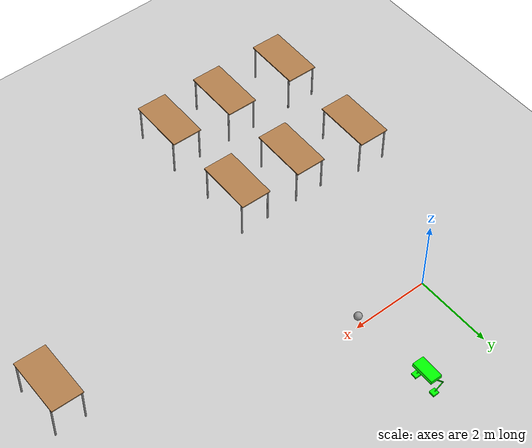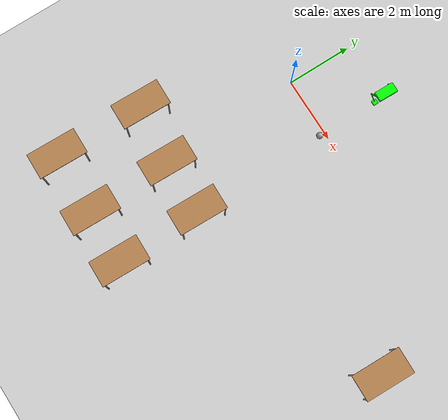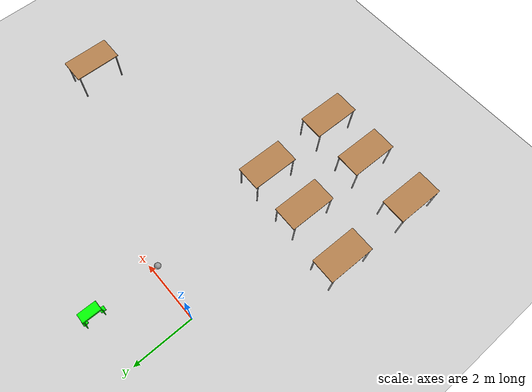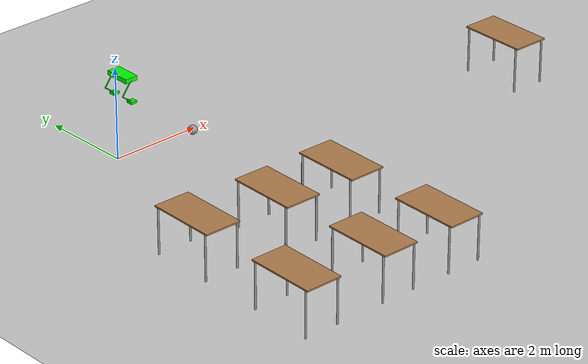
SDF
<sdf version="1.6">
 <world name="default">
  <model name="ground_plane">
   <static>1</static>
   <link name="link">
    <collision name="collision">
     <geometry><plane><normal>0 0 1</normal><size>100 100</size></plane></geometry>
     <surface>
      <contact><collide_bitmask>65535</collide_bitmask></contact>
      <friction><ode><mu>100</mu><mu2>50</mu2></ode></friction>
     </surface>
    </collision>
    <visual name="visual">
     <cast_shadows>0</cast_shadows>
     <geometry><plane><normal>0 0 1</normal><size>100 100</size></plane></geometry>
     <material>
      <script><uri>file://media/materials/scripts/gazebo.material</uri><name>Gazebo/Grey</name></script>
     </material>
    </visual>
   </link>
  </model>
  <model name="table_3">
   <static>1</static>
   <link name="link">
    <collision name="surface">
     <pose>0 0 1 0 -0 0</pose>
     <geometry><box><size>1.5 0.8 0.03</size></box></geometry>
     <surface><friction><ode><mu>0.6</mu><mu2>0.6</mu2></ode></friction></surface>
    </collision>
    <visual name="visual1">
     <pose>0 0 1 0 -0 0</pose>
     <geometry><box><size>1.5 0.8 0.03</size></box></geometry>
     <material>
      <script><uri>file://media/materials/scripts/gazebo.material</uri><name>Gazebo/Wood</name></script>
     </material>
    </visual>
    <collision name="front_left_leg">
     <pose>0.68 0.38 0.5 0 -0 0</pose>
     <geometry><cylinder><radius>0.02</radius><length>1</length></cylinder></geometry>
    </collision>
    <visual name="front_left_leg">
     <pose>0.68 0.38 0.5 0 -0 0</pose>
     <geometry><cylinder><radius>0.02</radius><length>1</length></cylinder></geometry>
     <material>
      <script><uri>file://media/materials/scripts/gazebo.material</uri><name>Gazebo/Grey</name></script>
     </material>
    </visual>
    <collision name="front_right_leg">
     <pose>0.68 -0.38 0.5 0 -0 0</pose>
     <geometry><cylinder><radius>0.02</radius><length>1</length></cylinder></geometry>
    </collision>
    <visual name="front_right_leg">
     <pose>0.68 -0.38 0.5 0 -0 0</pose>
     <geometry><cylinder><radius>0.02</radius><length>1</length></cylinder></geometry>
     <material>
      <script><uri>file://media/materials/scripts/gazebo.material</uri><name>Gazebo/Grey</name></script>
     </material>
    </visual>
    <collision name="back_right_leg">
     <pose>-0.68 -0.38 0.5 0 -0 0</pose>
     <geometry><cylinder><radius>0.02</radius><length>1</length></cylinder></geometry>
    </collision>
    <visual name="back_right_leg">
     <pose>-0.68 -0.38 0.5 0 -0 0</pose>
     <geometry><cylinder><radius>0.02</radius><length>1</length></cylinder></geometry>
     <material>
      <script><uri>file://media/materials/scripts/gazebo.material</uri><name>Gazebo/Grey</name></script>
     </material>
    </visual>
    <collision name="back_left_leg">
     <pose>-0.68 0.38 0.5 0 -0 0</pose>
     <geometry><cylinder><radius>0.02</radius><length>1</length></cylinder></geometry>
    </collision>
    <visual name="back_left_leg">
     <pose>-0.68 0.38 0.5 0 -0 0</pose>
     <geometry><cylinder><radius>0.02</radius><length>1</length></cylinder></geometry>
     <material>
      <script><uri>file://media/materials/scripts/gazebo.material</uri><name>Gazebo/Grey</name></script>
     </material>
    </visual>
   </link>
   <pose>-1.5427 -6.87927 0 0 -0 1.54837</pose>
  </model>
  <model name="table_3_clone">
   <static>1</static>
   <link name="link">
    <collision name="surface">
     <pose>0 0 1 0 -0 0</pose>
     <geometry><box><size>1.5 0.8 0.03</size></box></geometry>
     <surface><friction><ode><mu>0.6</mu><mu2>0.6</mu2></ode></friction></surface>
    </collision>
    <visual name="visual1">
     <pose>0 0 1 0 -0 0</pose>
     <geometry><box><size>1.5 0.8 0.03</size></box></geometry>
     <material>
      <script><uri>file://media/materials/scripts/gazebo.material</uri><name>Gazebo/Wood</name></script>
     </material>
    </visual>
    <collision name="front_left_leg">
     <pose>0.68 0.38 0.5 0 -0 0</pose>
     <geometry><cylinder><radius>0.02</radius><length>1</length></cylinder></geometry>
    </collision>
    <visual name="front_left_leg">
     <pose>0.68 0.38 0.5 0 -0 0</pose>
     <geometry><cylinder><radius>0.02</radius><length>1</length></cylinder></geometry>
     <material>
      <script><uri>file://media/materials/scripts/gazebo.material</uri><name>Gazebo/Grey</name></script>
     </material>
    </visual>
    <collision name="front_right_leg">
     <pose>0.68 -0.38 0.5 0 -0 0</pose>
     <geometry><cylinder><radius>0.02</radius><length>1</length></cylinder></geometry>
    </collision>
    <visual name="front_right_leg">
     <pose>0.68 -0.38 0.5 0 -0 0</pose>
     <geometry><cylinder><radius>0.02</radius><length>1</length></cylinder></geometry>
     <material>
      <script><uri>file://media/materials/scripts/gazebo.material</uri><name>Gazebo/Grey</name></script>
     </material>
    </visual>
    <collision name="back_right_leg">
     <pose>-0.68 -0.38 0.5 0 -0 0</pose>
     <geometry><cylinder><radius>0.02</radius><length>1</length></cylinder></geometry>
    </collision>
    <visual name="back_right_leg">
     <pose>-0.68 -0.38 0.5 0 -0 0</pose>
     <geometry><cylinder><radius>0.02</radius><length>1</length></cylinder></geometry>
     <material>
      <script><uri>file://media/materials/scripts/gazebo.material</uri><name>Gazebo/Grey</name></script>
     </material>
    </visual>
    <collision name="back_left_leg">
     <pose>-0.68 0.38 0.5 0 -0 0</pose>
     <geometry><cylinder><radius>0.02</radius><length>1</length></cylinder></geometry>
    </collision>
    <visual name="back_left_leg">
     <pose>-0.68 0.38 0.5 0 -0 0</pose>
     <geometry><cylinder><radius>0.02</radius><length>1</length></cylinder></geometry>
     <material>
      <script><uri>file://media/materials/scripts/gazebo.material</uri><name>Gazebo/Grey</name></script>
     </material>
    </visual>
   </link>
   <pose>-1.51069 -4.16084 0 0 -0 1.54837</pose>
  </model>
  <model name="table_3_clone_0">
   <static>1</static>
   <link name="link">
    <collision name="surface">
     <pose>0 0 1 0 -0 0</pose>
     <geometry><box><size>1.5 0.8 0.03</size></box></geometry>
     <surface><friction><ode><mu>0.6</mu><mu2>0.6</mu2></ode></friction></surface>
    </collision>
    <visual name="visual1">
     <pose>0 0 1 0 -0 0</pose>
     <geometry><box><size>1.5 0.8 0.03</size></box></geometry>
     <material>
      <script><uri>file://media/materials/scripts/gazebo.material</uri><name>Gazebo/Wood</name></script>
     </material>
    </visual>
    <collision name="front_left_leg">
     <pose>0.68 0.38 0.5 0 -0 0</pose>
     <geometry><cylinder><radius>0.02</radius><length>1</length></cylinder></geometry>
    </collision>
    <visual name="front_left_leg">
     <pose>0.68 0.38 0.5 0 -0 0</pose>
     <geometry><cylinder><radius>0.02</radius><length>1</length></cylinder></geometry>
     <material>
      <script><uri>file://media/materials/scripts/gazebo.material</uri><name>Gazebo/Grey</name></script>
     </material>
    </visual>
    <collision name="front_right_leg">
     <pose>0.68 -0.38 0.5 0 -0 0</pose>
     <geometry><cylinder><radius>0.02</radius><length>1</length></cylinder></geometry>
    </collision>
    <visual name="front_right_leg">
     <pose>0.68 -0.38 0.5 0 -0 0</pose>
     <geometry><cylinder><radius>0.02</radius><length>1</length></cylinder></geometry>
     <material>
      <script><uri>file://media/materials/scripts/gazebo.material</uri><name>Gazebo/Grey</name></script>
     </material>
    </visual>
    <collision name="back_right_leg">
     <pose>-0.68 -0.38 0.5 0 -0 0</pose>
     <geometry><cylinder><radius>0.02</radius><length>1</length></cylinder></geometry>
    </collision>
    <visual name="back_right_leg">
     <pose>-0.68 -0.38 0.5 0 -0 0</pose>
     <geometry><cylinder><radius>0.02</radius><length>1</length></cylinder></geometry>
     <material>
      <script><uri>file://media/materials/scripts/gazebo.material</uri><name>Gazebo/Grey</name></script>
     </material>
    </visual>
    <collision name="back_left_leg">
     <pose>-0.68 0.38 0.5 0 -0 0</pose>
     <geometry><cylinder><radius>0.02</radius><length>1</length></cylinder></geometry>
    </collision>
    <visual name="back_left_leg">
     <pose>-0.68 0.38 0.5 0 -0 0</pose>
     <geometry><cylinder><radius>0.02</radius><length>1</length></cylinder></geometry>
     <material>
      <script><uri>file://media/materials/scripts/gazebo.material</uri><name>Gazebo/Grey</name></script>
     </material>
    </visual>
   </link>
   <pose>0.323979 -6.91935 0 0 -0 1.54837</pose>
  </model>
  <model name="table_3_clone_1">
   <static>1</static>
   <link name="link">
    <collision name="surface">
     <pose>0 0 1 0 -0 0</pose>
     <geometry><box><size>1.5 0.8 0.03</size></box></geometry>
     <surface><friction><ode><mu>0.6</mu><mu2>0.6</mu2></ode></friction></surface>
    </collision>
    <visual name="visual1">
     <pose>0 0 1 0 -0 0</pose>
     <geometry><box><size>1.5 0.8 0.03</size></box></geometry>
     <material>
      <script><uri>file://media/materials/scripts/gazebo.material</uri><name>Gazebo/Wood</name></script>
     </material>
    </visual>
    <collision name="front_left_leg">
     <pose>0.68 0.38 0.5 0 -0 0</pose>
     <geometry><cylinder><radius>0.02</radius><length>1</length></cylinder></geometry>
    </collision>
    <visual name="front_left_leg">
     <pose>0.68 0.38 0.5 0 -0 0</pose>
     <geometry><cylinder><radius>0.02</radius><length>1</length></cylinder></geometry>
     <material>
      <script><uri>file://media/materials/scripts/gazebo.material</uri><name>Gazebo/Grey</name></script>
     </material>
    </visual>
    <collision name="front_right_leg">
     <pose>0.68 -0.38 0.5 0 -0 0</pose>
     <geometry><cylinder><radius>0.02</radius><length>1</length></cylinder></geometry>
    </collision>
    <visual name="front_right_leg">
     <pose>0.68 -0.38 0.5 0 -0 0</pose>
     <geometry><cylinder><radius>0.02</radius><length>1</length></cylinder></geometry>
     <material>
      <script><uri>file://media/materials/scripts/gazebo.material</uri><name>Gazebo/Grey</name></script>
     </material>
    </visual>
    <collision name="back_right_leg">
     <pose>-0.68 -0.38 0.5 0 -0 0</pose>
     <geometry><cylinder><radius>0.02</radius><length>1</length></cylinder></geometry>
    </collision>
    <visual name="back_right_leg">
     <pose>-0.68 -0.38 0.5 0 -0 0</pose>
     <geometry><cylinder><radius>0.02</radius><length>1</length></cylinder></geometry>
     <material>
      <script><uri>file://media/materials/scripts/gazebo.material</uri><name>Gazebo/Grey</name></script>
     </material>
    </visual>
    <collision name="back_left_leg">
     <pose>-0.68 0.38 0.5 0 -0 0</pose>
     <geometry><cylinder><radius>0.02</radius><length>1</length></cylinder></geometry>
    </collision>
    <visual name="back_left_leg">
     <pose>-0.68 0.38 0.5 0 -0 0</pose>
     <geometry><cylinder><radius>0.02</radius><length>1</length></cylinder></geometry>
     <material>
      <script><uri>file://media/materials/scripts/gazebo.material</uri><name>Gazebo/Grey</name></script>
     </material>
    </visual>
   </link>
   <pose>0.270182 -4.39298 0 0 -0 1.54837</pose>
  </model>
  <model name="table_3_clone_2">
   <static>1</static>
   <link name="link">
    <collision name="surface">
     <pose>0 0 1 0 -0 0</pose>
     <geometry><box><size>1.5 0.8 0.03</size></box></geometry>
     <surface><friction><ode><mu>0.6</mu><mu2>0.6</mu2></ode></friction></surface>
    </collision>
    <visual name="visual1">
     <pose>0 0 1 0 -0 0</pose>
     <geometry><box><size>1.5 0.8 0.03</size></box></geometry>
     <material>
      <script><uri>file://media/materials/scripts/gazebo.material</uri><name>Gazebo/Wood</name></script>
     </material>
    </visual>
    <collision name="front_left_leg">
     <pose>0.68 0.38 0.5 0 -0 0</pose>
     <geometry><cylinder><radius>0.02</radius><length>1</length></cylinder></geometry>
    </collision>
    <visual name="front_left_leg">
     <pose>0.68 0.38 0.5 0 -0 0</pose>
     <geometry><cylinder><radius>0.02</radius><length>1</length></cylinder></geometry>
     <material>
      <script><uri>file://media/materials/scripts/gazebo.material</uri><name>Gazebo/Grey</name></script>
     </material>
    </visual>
    <collision name="front_right_leg">
     <pose>0.68 -0.38 0.5 0 -0 0</pose>
     <geometry><cylinder><radius>0.02</radius><length>1</length></cylinder></geometry>
    </collision>
    <visual name="front_right_leg">
     <pose>0.68 -0.38 0.5 0 -0 0</pose>
     <geometry><cylinder><radius>0.02</radius><length>1</length></cylinder></geometry>
     <material>
      <script><uri>file://media/materials/scripts/gazebo.material</uri><name>Gazebo/Grey</name></script>
     </material>
    </visual>
    <collision name="back_right_leg">
     <pose>-0.68 -0.38 0.5 0 -0 0</pose>
     <geometry><cylinder><radius>0.02</radius><length>1</length></cylinder></geometry>
    </collision>
    <visual name="back_right_leg">
     <pose>-0.68 -0.38 0.5 0 -0 0</pose>
     <geometry><cylinder><radius>0.02</radius><length>1</length></cylinder></geometry>
     <material>
      <script><uri>file://media/materials/scripts/gazebo.material</uri><name>Gazebo/Grey</name></script>
     </material>
    </visual>
    <collision name="back_left_leg">
     <pose>-0.68 0.38 0.5 0 -0 0</pose>
     <geometry><cylinder><radius>0.02</radius><length>1</length></cylinder></geometry>
    </collision>
    <visual name="back_left_leg">
     <pose>-0.68 0.38 0.5 0 -0 0</pose>
     <geometry><cylinder><radius>0.02</radius><length>1</length></cylinder></geometry>
     <material>
      <script><uri>file://media/materials/scripts/gazebo.material</uri><name>Gazebo/Grey</name></script>
     </material>
    </visual>
   </link>
   <pose>1.96463 -6.97316 0 0 -0 1.54837</pose>
  </model>
  <model name="table_3_clone_3">
   <static>1</static>
   <link name="link">
    <collision name="surface">
     <pose>0 0 1 0 -0 0</pose>
     <geometry><box><size>1.5 0.8 0.03</size></box></geometry>
     <surface><friction><ode><mu>0.6</mu><mu2>0.6</mu2></ode></friction></surface>
    </collision>
    <visual name="visual1">
     <pose>0 0 1 0 -0 0</pose>
     <geometry><box><size>1.5 0.8 0.03</size></box></geometry>
     <material>
      <script><uri>file://media/materials/scripts/gazebo.material</uri><name>Gazebo/Wood</name></script>
     </material>
    </visual>
    <collision name="front_left_leg">
     <pose>0.68 0.38 0.5 0 -0 0</pose>
     <geometry><cylinder><radius>0.02</radius><length>1</length></cylinder></geometry>
    </collision>
    <visual name="front_left_leg">
     <pose>0.68 0.38 0.5 0 -0 0</pose>
     <geometry><cylinder><radius>0.02</radius><length>1</length></cylinder></geometry>
     <material>
      <script><uri>file://media/materials/scripts/gazebo.material</uri><name>Gazebo/Grey</name></script>
     </material>
    </visual>
    <collision name="front_right_leg">
     <pose>0.68 -0.38 0.5 0 -0 0</pose>
     <geometry><cylinder><radius>0.02</radius><length>1</length></cylinder></geometry>
    </collision>
    <visual name="front_right_leg">
     <pose>0.68 -0.38 0.5 0 -0 0</pose>
     <geometry><cylinder><radius>0.02</radius><length>1</length></cylinder></geometry>
     <material>
      <script><uri>file://media/materials/scripts/gazebo.material</uri><name>Gazebo/Grey</name></script>
     </material>
    </visual>
    <collision name="back_right_leg">
     <pose>-0.68 -0.38 0.5 0 -0 0</pose>
     <geometry><cylinder><radius>0.02</radius><length>1</length></cylinder></geometry>
    </collision>
    <visual name="back_right_leg">
     <pose>-0.68 -0.38 0.5 0 -0 0</pose>
     <geometry><cylinder><radius>0.02</radius><length>1</length></cylinder></geometry>
     <material>
      <script><uri>file://media/materials/scripts/gazebo.material</uri><name>Gazebo/Grey</name></script>
     </material>
    </visual>
    <collision name="back_left_leg">
     <pose>-0.68 0.38 0.5 0 -0 0</pose>
     <geometry><cylinder><radius>0.02</radius><length>1</length></cylinder></geometry>
    </collision>
    <visual name="back_left_leg">
     <pose>-0.68 0.38 0.5 0 -0 0</pose>
     <geometry><cylinder><radius>0.02</radius><length>1</length></cylinder></geometry>
     <material>
      <script><uri>file://media/materials/scripts/gazebo.material</uri><name>Gazebo/Grey</name></script>
     </material>
    </visual>
   </link>
   <pose>1.89535 -4.42067 0 0 -0 1.54837</pose>
  </model>
  <model name="humanoid_robot_0">
   <link name="link_10">
    <inertial>
     <mass>10</mass>
     <inertia>
      <ixx>0.166667</ixx>
      <ixy>0</ixy>
      <ixz>0</ixz>
      <iyy>0.166667</iyy>
      <iyz>0</iyz>
      <izz>0.166667</izz>
     </inertia>
    </inertial>
    <pose>-0.193692 0.719799 0.180001 -0 -0 -0</pose>
    <visual name="visual">
     <geometry><box><size>0.15 0.15 0.05</size></box></geometry>
     <material>
      <lighting>1</lighting>
      <script><uri>file://media/materials/scripts/gazebo.material</uri><name>Gazebo/Grey</name></script>
      <shader type="vertex"><normal_map>__default__</normal_map></shader>
      <ambient>0 1 0 1</ambient>
      <diffuse>0.7 0.7 0.7 1</diffuse>
      <specular>0.01 0.01 0.01 1</specular>
      <emissive>0 0 0 1</emissive>
     </material>
    </visual>
    <collision name="collision">
     <geometry><box><size>0.15 0.15 0.05</size></box></geometry>
     <surface>
      <friction>
       <ode><mu>1</mu><mu2>1</mu2><fdir1>0 0 0</fdir1><slip1>0</slip1><slip2>0</slip2></ode>
       <torsional>
        <coefficient>1</coefficient>
        <patch_radius>0</patch_radius>
        <surface_radius>0</surface_radius>
        <use_patch_radius>1</use_patch_radius>
        <ode><slip>0</slip></ode>
       </torsional>
      </friction>
      <bounce><restitution_coefficient>0</restitution_coefficient><threshold>1e+06</threshold></bounce>
      <contact>
       <collide_without_contact>0</collide_without_contact>
       <collide_without_contact_bitmask>1</collide_without_contact_bitmask>
       <collide_bitmask>1</collide_bitmask>
       <ode>
        <soft_cfm>0</soft_cfm>
        <soft_erp>0.2</soft_erp>
        <kp>1e+13</kp>
        <kd>1</kd>
        <max_vel>0.01</max_vel>
        <min_depth>0</min_depth>
       </ode>
       <bullet>
        <split_impulse>1</split_impulse>
        <split_impulse_penetration_threshold>-0.01</split_impulse_penetration_threshold>
        <soft_cfm>0</soft_cfm>
        <soft_erp>0.2</soft_erp>
        <kp>1e+13</kp>
        <kd>1</kd>
       </bullet>
      </contact>
     </surface>
    </collision>
   </link>
   <link name="link_10_clone">
    <inertial>
     <mass>10</mass>
     <inertia>
      <ixx>0.166667</ixx>
      <ixy>0</ixy>
      <ixz>0</ixz>
      <iyy>0.166667</iyy>
      <iyz>0</iyz>
      <izz>0.166667</izz>
     </inertia>
    </inertial>
    <pose>-0.193692 0.139799 0.180001 -0 -0 -0</pose>
    <visual name="visual">
     <geometry><box><size>0.15 0.15 0.05</size></box></geometry>
     <material>
      <lighting>1</lighting>
      <script><uri>file://media/materials/scripts/gazebo.material</uri><name>Gazebo/Grey</name></script>
      <shader type="vertex"><normal_map>__default__</normal_map></shader>
      <ambient>0 1 0 1</ambient>
      <diffuse>0.7 0.7 0.7 1</diffuse>
      <specular>0.01 0.01 0.01 1</specular>
      <emissive>0 0 0 1</emissive>
     </material>
    </visual>
    <collision name="collision">
     <geometry><box><size>0.15 0.15 0.05</size></box></geometry>
     <surface>
      <friction>
       <ode><mu>1</mu><mu2>1</mu2><fdir1>0 0 0</fdir1><slip1>0</slip1><slip2>0</slip2></ode>
       <torsional>
        <coefficient>1</coefficient>
        <patch_radius>0</patch_radius>
        <surface_radius>0</surface_radius>
        <use_patch_radius>1</use_patch_radius>
        <ode><slip>0</slip></ode>
       </torsional>
      </friction>
      <bounce><restitution_coefficient>0</restitution_coefficient><threshold>1e+06</threshold></bounce>
      <contact>
       <collide_without_contact>0</collide_without_contact>
       <collide_without_contact_bitmask>1</collide_without_contact_bitmask>
       <collide_bitmask>1</collide_bitmask>
       <ode>
        <soft_cfm>0</soft_cfm>
        <soft_erp>0.2</soft_erp>
        <kp>1e+13</kp>
        <kd>1</kd>
        <max_vel>0.01</max_vel>
        <min_depth>0</min_depth>
       </ode>
       <bullet>
        <split_impulse>1</split_impulse>
        <split_impulse_penetration_threshold>-0.01</split_impulse_penetration_threshold>
        <soft_cfm>0</soft_cfm>
        <soft_erp>0.2</soft_erp>
        <kp>1e+13</kp>
        <kd>1</kd>
       </bullet>
      </contact>
     </surface>
    </collision>
   </link>
   <link name="link_7">
    <inertial>
     <mass>1</mass>
     <inertia>
      <ixx>0.166667</ixx>
      <ixy>0</ixy>
      <ixz>0</ixz>
      <iyy>0.166667</iyy>
      <iyz>0</iyz>
      <izz>0.166667</izz>
     </inertia>
    </inertial>
    <pose>-0.193691 0.429799 0.68 0 -0 0</pose>
    <visual name="visual">
     <geometry><box><size>0.3 0.6 0.1</size></box></geometry>
     <material>
      <lighting>1</lighting>
      <script><uri>file://media/materials/scripts/gazebo.material</uri><name>Gazebo/Grey</name></script>
      <shader type="vertex"><normal_map>__default__</normal_map></shader>
      <ambient>0 1 0 1</ambient>
      <diffuse>0.7 0.7 0.7 1</diffuse>
      <specular>0.01 0.01 0.01 1</specular>
      <emissive>0 0 0 1</emissive>
     </material>
    </visual>
    <collision name="collision">
     <geometry><box><size>0.3 0.6 0.1</size></box></geometry>
     <surface>
      <friction>
       <ode><mu>1</mu><mu2>1</mu2><fdir1>0 0 0</fdir1><slip1>0</slip1><slip2>0</slip2></ode>
       <torsional>
        <coefficient>1</coefficient>
        <patch_radius>0</patch_radius>
        <surface_radius>0</surface_radius>
        <use_patch_radius>1</use_patch_radius>
        <ode><slip>0</slip></ode>
       </torsional>
      </friction>
      <bounce><restitution_coefficient>0</restitution_coefficient><threshold>1e+06</threshold></bounce>
      <contact>
       <collide_without_contact>0</collide_without_contact>
       <collide_without_contact_bitmask>1</collide_without_contact_bitmask>
       <collide_bitmask>1</collide_bitmask>
       <ode>
        <soft_cfm>0</soft_cfm>
        <soft_erp>0.2</soft_erp>
        <kp>1e+13</kp>
        <kd>1</kd>
        <max_vel>0.01</max_vel>
        <min_depth>0</min_depth>
       </ode>
       <bullet>
        <split_impulse>1</split_impulse>
        <split_impulse_penetration_threshold>-0.01</split_impulse_penetration_threshold>
        <soft_cfm>0</soft_cfm>
        <soft_erp>0.2</soft_erp>
        <kp>1e+13</kp>
        <kd>1</kd>
       </bullet>
      </contact>
     </surface>
    </collision>
   </link>
   <link name="link_8">
    <inertial>
     <mass>1</mass>
     <inertia>
      <ixx>0.166667</ixx>
      <ixy>0</ixy>
      <ixz>0</ixz>
      <iyy>0.166667</iyy>
      <iyz>0</iyz>
      <izz>0.166667</izz>
     </inertia>
     <pose>0 0 -0.01 0 -0 0</pose>
    </inertial>
    <pose>-0.193691 0.139799 0.68 0 -0.6435 0</pose>
    <visual name="visual">
     <pose>0 0 -0.2 0 -0 0</pose>
     <geometry><box><size>0.02 0.02 0.4</size></box></geometry>
     <material>
      <lighting>1</lighting>
      <script><uri>file://media/materials/scripts/gazebo.material</uri><name>Gazebo/Grey</name></script>
      <shader type="vertex"><normal_map>__default__</normal_map></shader>
      <ambient>0 1 0 1</ambient>
      <diffuse>0.7 0.7 0.7 1</diffuse>
      <specular>0.01 0.01 0.01 1</specular>
      <emissive>0 0 0 1</emissive>
     </material>
    </visual>
    <collision name="collision">
     <pose>0 0 -0.2 0 -0 0</pose>
     <geometry><box><size>0.02 0.02 0.4</size></box></geometry>
     <surface>
      <friction>
       <ode><mu>1</mu><mu2>1</mu2><fdir1>0 0 0</fdir1><slip1>0</slip1><slip2>0</slip2></ode>
       <torsional>
        <coefficient>1</coefficient>
        <patch_radius>0</patch_radius>
        <surface_radius>0</surface_radius>
        <use_patch_radius>1</use_patch_radius>
        <ode><slip>0</slip></ode>
       </torsional>
      </friction>
      <bounce><restitution_coefficient>0</restitution_coefficient><threshold>1e+06</threshold></bounce>
      <contact>
       <collide_without_contact>0</collide_without_contact>
       <collide_without_contact_bitmask>1</collide_without_contact_bitmask>
       <collide_bitmask>1</collide_bitmask>
       <ode>
        <soft_cfm>0</soft_cfm>
        <soft_erp>0.2</soft_erp>
        <kp>1e+13</kp>
        <kd>1</kd>
        <max_vel>0.01</max_vel>
        <min_depth>0</min_depth>
       </ode>
       <bullet>
        <split_impulse>1</split_impulse>
        <split_impulse_penetration_threshold>-0.01</split_impulse_penetration_threshold>
        <soft_cfm>0</soft_cfm>
        <soft_erp>0.2</soft_erp>
        <kp>1e+13</kp>
        <kd>1</kd>
       </bullet>
      </contact>
     </surface>
    </collision>
   </link>
   <link name="link_8_clone">
    <inertial>
     <mass>1</mass>
     <inertia>
      <ixx>0.166667</ixx>
      <ixy>0</ixy>
      <ixz>0</ixz>
      <iyy>0.166667</iyy>
      <iyz>0</iyz>
      <izz>0.166667</izz>
     </inertia>
     <pose>0 0 -0.01 0 -0 0</pose>
    </inertial>
    <pose>-0.193691 0.719799 0.68 0 -0.6435 0</pose>
    <visual name="visual">
     <pose>0 0 -0.2 0 -0 0</pose>
     <geometry><box><size>0.02 0.02 0.4</size></box></geometry>
     <material>
      <lighting>1</lighting>
      <script><uri>file://media/materials/scripts/gazebo.material</uri><name>Gazebo/Grey</name></script>
      <shader type="vertex"><normal_map>__default__</normal_map></shader>
      <ambient>0 1 0 1</ambient>
      <diffuse>0.7 0.7 0.7 1</diffuse>
      <specular>0.01 0.01 0.01 1</specular>
      <emissive>0 0 0 1</emissive>
     </material>
    </visual>
    <collision name="collision">
     <pose>0 0 -0.2 0 -0 0</pose>
     <geometry><box><size>0.02 0.02 0.4</size></box></geometry>
     <surface>
      <friction>
       <ode><mu>1</mu><mu2>1</mu2><fdir1>0 0 0</fdir1><slip1>0</slip1><slip2>0</slip2></ode>
       <torsional>
        <coefficient>1</coefficient>
        <patch_radius>0</patch_radius>
        <surface_radius>0</surface_radius>
        <use_patch_radius>1</use_patch_radius>
        <ode><slip>0</slip></ode>
       </torsional>
      </friction>
      <bounce><restitution_coefficient>0</restitution_coefficient><threshold>1e+06</threshold></bounce>
      <contact>
       <collide_without_contact>0</collide_without_contact>
       <collide_without_contact_bitmask>1</collide_without_contact_bitmask>
       <collide_bitmask>1</collide_bitmask>
       <ode>
        <soft_cfm>0</soft_cfm>
        <soft_erp>0.2</soft_erp>
        <kp>1e+13</kp>
        <kd>1</kd>
        <max_vel>0.01</max_vel>
        <min_depth>0</min_depth>
       </ode>
       <bullet>
        <split_impulse>1</split_impulse>
        <split_impulse_penetration_threshold>-0.01</split_impulse_penetration_threshold>
        <soft_cfm>0</soft_cfm>
        <soft_erp>0.2</soft_erp>
        <kp>1e+13</kp>
        <kd>1</kd>
       </bullet>
      </contact>
     </surface>
    </collision>
   </link>
   <link name="link_9">
    <inertial>
     <mass>1</mass>
     <inertia>
      <ixx>0.166667</ixx>
      <ixy>0</ixy>
      <ixz>0</ixz>
      <iyy>0.166667</iyy>
      <iyz>0</iyz>
      <izz>0.166667</izz>
     </inertia>
    </inertial>
    <pose>0.046308 0.719799 0.359999 0 0.9273 0</pose>
    <visual name="visual">
     <pose>0 0 -0.15 0 -0 0</pose>
     <geometry><box><size>0.02 0.02 0.3</size></box></geometry>
     <material>
      <lighting>1</lighting>
      <script><uri>file://media/materials/scripts/gazebo.material</uri><name>Gazebo/Grey</name></script>
      <shader type="vertex"><normal_map>__default__</normal_map></shader>
      <ambient>0 1 0 1</ambient>
      <diffuse>0.7 0.7 0.7 1</diffuse>
      <specular>0.01 0.01 0.01 1</specular>
      <emissive>0 0 0 1</emissive>
     </material>
    </visual>
    <collision name="collision">
     <pose>0 0 -0.15 0 -0 0</pose>
     <geometry><box><size>0.02 0.02 0.3</size></box></geometry>
     <surface>
      <friction>
       <ode><mu>1</mu><mu2>1</mu2><fdir1>0 0 0</fdir1><slip1>0</slip1><slip2>0</slip2></ode>
       <torsional>
        <coefficient>1</coefficient>
        <patch_radius>0</patch_radius>
        <surface_radius>0</surface_radius>
        <use_patch_radius>1</use_patch_radius>
        <ode><slip>0</slip></ode>
       </torsional>
      </friction>
      <bounce><restitution_coefficient>0</restitution_coefficient><threshold>1e+06</threshold></bounce>
      <contact>
       <collide_without_contact>0</collide_without_contact>
       <collide_without_contact_bitmask>1</collide_without_contact_bitmask>
       <collide_bitmask>1</collide_bitmask>
       <ode>
        <soft_cfm>0</soft_cfm>
        <soft_erp>0.2</soft_erp>
        <kp>1e+13</kp>
        <kd>1</kd>
        <max_vel>0.01</max_vel>
        <min_depth>0</min_depth>
       </ode>
       <bullet>
        <split_impulse>1</split_impulse>
        <split_impulse_penetration_threshold>-0.01</split_impulse_penetration_threshold>
        <soft_cfm>0</soft_cfm>
        <soft_erp>0.2</soft_erp>
        <kp>1e+13</kp>
        <kd>1</kd>
       </bullet>
      </contact>
     </surface>
    </collision>
   </link>
   <link name="link_9_clone">
    <inertial>
     <mass>1</mass>
     <inertia>
      <ixx>0.166667</ixx>
      <ixy>0</ixy>
      <ixz>0</ixz>
      <iyy>0.166667</iyy>
      <iyz>0</iyz>
      <izz>0.166667</izz>
     </inertia>
    </inertial>
    <pose>0.046308 0.139799 0.359999 0 0.9273 0</pose>
    <visual name="visual">
     <pose>0 0 -0.15 0 -0 0</pose>
     <geometry><box><size>0.02 0.02 0.3</size></box></geometry>
     <material>
      <lighting>1</lighting>
      <script><uri>file://media/materials/scripts/gazebo.material</uri><name>Gazebo/Grey</name></script>
      <shader type="vertex"><normal_map>__default__</normal_map></shader>
      <ambient>0 1 0 1</ambient>
      <diffuse>0.7 0.7 0.7 1</diffuse>
      <specular>0.01 0.01 0.01 1</specular>
      <emissive>0 0 0 1</emissive>
     </material>
    </visual>
    <collision name="collision">
     <pose>0 0 -0.15 0 -0 0</pose>
     <geometry><box><size>0.02 0.02 0.3</size></box></geometry>
     <surface>
      <friction>
       <ode><mu>1</mu><mu2>1</mu2><fdir1>0 0 0</fdir1><slip1>0</slip1><slip2>0</slip2></ode>
       <torsional>
        <coefficient>1</coefficient>
        <patch_radius>0</patch_radius>
        <surface_radius>0</surface_radius>
        <use_patch_radius>1</use_patch_radius>
        <ode><slip>0</slip></ode>
       </torsional>
      </friction>
      <bounce><restitution_coefficient>0</restitution_coefficient><threshold>1e+06</threshold></bounce>
      <contact>
       <collide_without_contact>0</collide_without_contact>
       <collide_without_contact_bitmask>1</collide_without_contact_bitmask>
       <collide_bitmask>1</collide_bitmask>
       <ode>
        <soft_cfm>0</soft_cfm>
        <soft_erp>0.2</soft_erp>
        <kp>1e+13</kp>
        <kd>1</kd>
        <max_vel>0.01</max_vel>
        <min_depth>0</min_depth>
       </ode>
       <bullet>
        <split_impulse>1</split_impulse>
        <split_impulse_penetration_threshold>-0.01</split_impulse_penetration_threshold>
        <soft_cfm>0</soft_cfm>
        <soft_erp>0.2</soft_erp>
        <kp>1e+13</kp>
        <kd>1</kd>
       </bullet>
      </contact>
     </surface>
    </collision>
   </link>
   <joint name="link_7_JOINT_1" type="fixed">
    <parent>link_7</parent>
    <child>link_8</child>
    <physics>
     <ode><limit><cfm>0</cfm><erp>0.2</erp></limit><suspension><cfm>0</cfm><erp>0.2</erp></suspension></ode>
    </physics>
   </joint>
   <joint name="link_7_JOINT_2" type="fixed">
    <parent>link_7</parent>
    <child>link_8_clone</child>
    <physics>
     <ode><limit><cfm>0</cfm><erp>0.2</erp></limit><suspension><cfm>0</cfm><erp>0.2</erp></suspension></ode>
    </physics>
   </joint>
   <joint name="link_8_JOINT_5" type="fixed">
    <parent>link_8</parent>
    <child>link_9_clone</child>
    <physics>
     <ode><limit><cfm>0</cfm><erp>0.2</erp></limit><suspension><cfm>0</cfm><erp>0.2</erp></suspension></ode>
    </physics>
   </joint>
   <joint name="link_8_clone_JOINT_4" type="fixed">
    <parent>link_8_clone</parent>
    <child>link_9</child>
    <physics>
     <ode><limit><cfm>0</cfm><erp>0.2</erp></limit><suspension><cfm>0</cfm><erp>0.2</erp></suspension></ode>
    </physics>
   </joint>
   <joint name="link_9_JOINT_6" type="fixed">
    <parent>link_9</parent>
    <child>link_10</child>
    <physics>
     <ode><limit><cfm>0</cfm><erp>0.2</erp></limit><suspension><cfm>0</cfm><erp>0.2</erp></suspension></ode>
    </physics>
   </joint>
   <joint name="link_9_clone_JOINT_7" type="fixed">
    <parent>link_9_clone</parent>
    <child>link_10_clone</child>
    <physics>
     <ode><limit><cfm>0</cfm><erp>0.2</erp></limit><suspension><cfm>0</cfm><erp>0.2</erp></suspension></ode>
    </physics>
   </joint>
   <static>0</static>
   <pose>1.63776 2.47034 -0.154999 -2e-06 -0 3.12074</pose>
  </model>
  <model name="table_3_clone_4">
   <static>1</static>
   <link name="link">
    <collision name="surface">
     <pose>0 0 1 0 -0 0</pose>
     <geometry><box><size>1.5 0.8 0.03</size></box></geometry>
     <surface><friction><ode><mu>0.6</mu><mu2>0.6</mu2></ode></friction></surface>
    </collision>
    <visual name="visual1">
     <pose>0 0 1 0 -0 0</pose>
     <geometry><box><size>1.5 0.8 0.03</size></box></geometry>
     <material>
      <script><uri>file://media/materials/scripts/gazebo.material</uri><name>Gazebo/Wood</name></script>
     </material>
    </visual>
    <collision name="front_left_leg">
     <pose>0.68 0.38 0.5 0 -0 0</pose>
     <geometry><cylinder><radius>0.02</radius><length>1</length></cylinder></geometry>
    </collision>
    <visual name="front_left_leg">
     <pose>0.68 0.38 0.5 0 -0 0</pose>
     <geometry><cylinder><radius>0.02</radius><length>1</length></cylinder></geometry>
     <material>
      <script><uri>file://media/materials/scripts/gazebo.material</uri><name>Gazebo/Grey</name></script>
     </material>
    </visual>
    <collision name="front_right_leg">
     <pose>0.68 -0.38 0.5 0 -0 0</pose>
     <geometry><cylinder><radius>0.02</radius><length>1</length></cylinder></geometry>
    </collision>
    <visual name="front_right_leg">
     <pose>0.68 -0.38 0.5 0 -0 0</pose>
     <geometry><cylinder><radius>0.02</radius><length>1</length></cylinder></geometry>
     <material>
      <script><uri>file://media/materials/scripts/gazebo.material</uri><name>Gazebo/Grey</name></script>
     </material>
    </visual>
    <collision name="back_right_leg">
     <pose>-0.68 -0.38 0.5 0 -0 0</pose>
     <geometry><cylinder><radius>0.02</radius><length>1</length></cylinder></geometry>
    </collision>
    <visual name="back_right_leg">
     <pose>-0.68 -0.38 0.5 0 -0 0</pose>
     <geometry><cylinder><radius>0.02</radius><length>1</length></cylinder></geometry>
     <material>
      <script><uri>file://media/materials/scripts/gazebo.material</uri><name>Gazebo/Grey</name></script>
     </material>
    </visual>
    <collision name="back_left_leg">
     <pose>-0.68 0.38 0.5 0 -0 0</pose>
     <geometry><cylinder><radius>0.02</radius><length>1</length></cylinder></geometry>
    </collision>
    <visual name="back_left_leg">
     <pose>-0.68 0.38 0.5 0 -0 0</pose>
     <geometry><cylinder><radius>0.02</radius><length>1</length></cylinder></geometry>
     <material>
      <script><uri>file://media/materials/scripts/gazebo.material</uri><name>Gazebo/Grey</name></script>
     </material>
    </visual>
   </link>
   <pose>8.36825 -2.59817 0 0 -0 1.54837</pose>
  </model>
  <model name="white_ball">
   <link name="link">
    <inertial>
     <mass>1</mass>
     <inertia><ixx>0.1</ixx><ixy>0</ixy><ixz>0</ixz><iyy>0.1</iyy><iyz>0</iyz><izz>0.1</izz></inertia>
    </inertial>
    <visual name="visual">
     <geometry><sphere><radius>0.1</radius></sphere></geometry>
     <material>
      <script><name>Gazebo/Grey</name><uri>file://media/materials/scripts/gazebo.material</uri></script>
      <shader type="vertex"><normal_map>__default__</normal_map></shader>
      <ambient>1 1 1 1</ambient>
      <diffuse>1 1 1 1</diffuse>
      <specular>1 1 1 1</specular>
      <emissive>1 1 1 1</emissive>
     </material>
    </visual>
    <collision name="collision">
     <geometry><sphere><radius>0.1</radius></sphere></geometry>
     <surface>
      <friction>
       <ode><mu>1</mu><mu2>1</mu2><fdir1>0 0 0</fdir1><slip1>0</slip1><slip2>0</slip2></ode>
       <torsional>
        <coefficient>1</coefficient>
        <patch_radius>0</patch_radius>
        <surface_radius>0</surface_radius>
        <use_patch_radius>1</use_patch_radius>
        <ode><slip>0</slip></ode>
       </torsional>
      </friction>
      <bounce><restitution_coefficient>0</restitution_coefficient><threshold>1e+06</threshold></bounce>
      <contact>
       <collide_without_contact>0</collide_without_contact>
       <collide_without_contact_bitmask>1</collide_without_contact_bitmask>
       <collide_bitmask>1</collide_bitmask>
       <ode>
        <soft_cfm>0</soft_cfm>
        <soft_erp>0.2</soft_erp>
        <kp>1e+13</kp>
        <kd>1</kd>
        <max_vel>0.01</max_vel>
        <min_depth>0</min_depth>
       </ode>
       <bullet>
        <split_impulse>1</split_impulse>
        <split_impulse_penetration_threshold>-0.01</split_impulse_penetration_threshold>
        <soft_cfm>0</soft_cfm>
        <soft_erp>0.2</soft_erp>
        <kp>1e+13</kp>
        <kd>1</kd>
       </bullet>
      </contact>
     </surface>
    </collision>
   </link>
   <static>0</static>
   <pose>1.80494 -0.182846 0.1 0 -0 0</pose>
  </model>
 </world>
</sdf>
